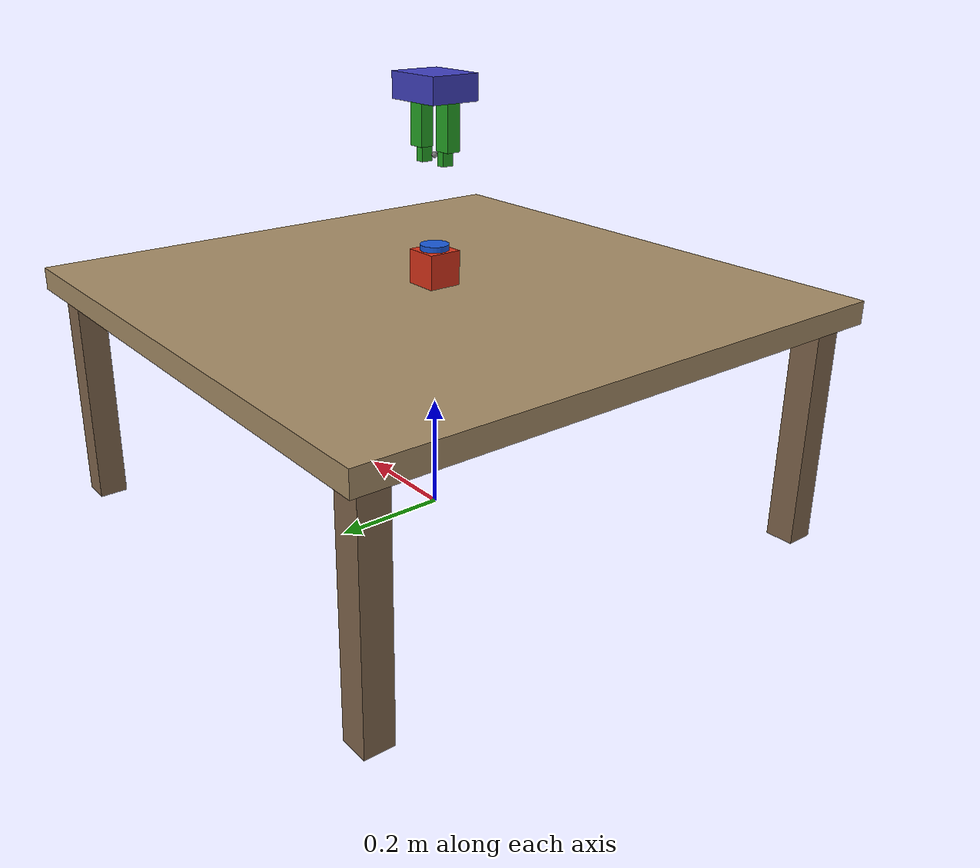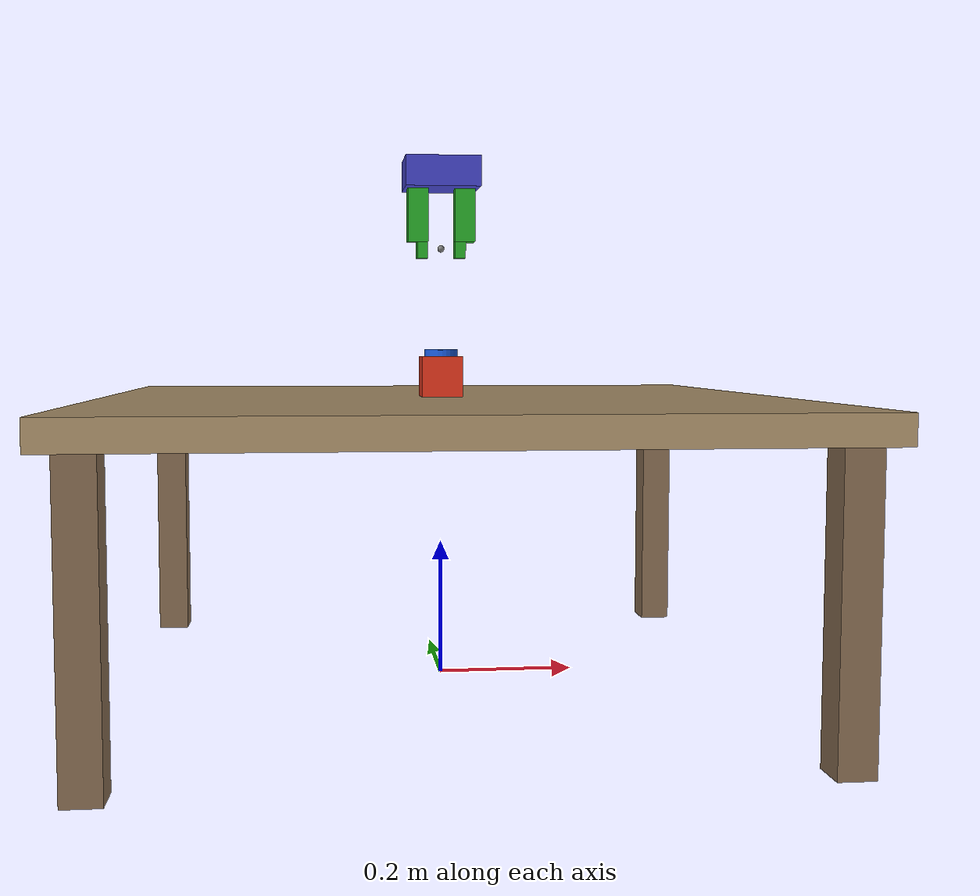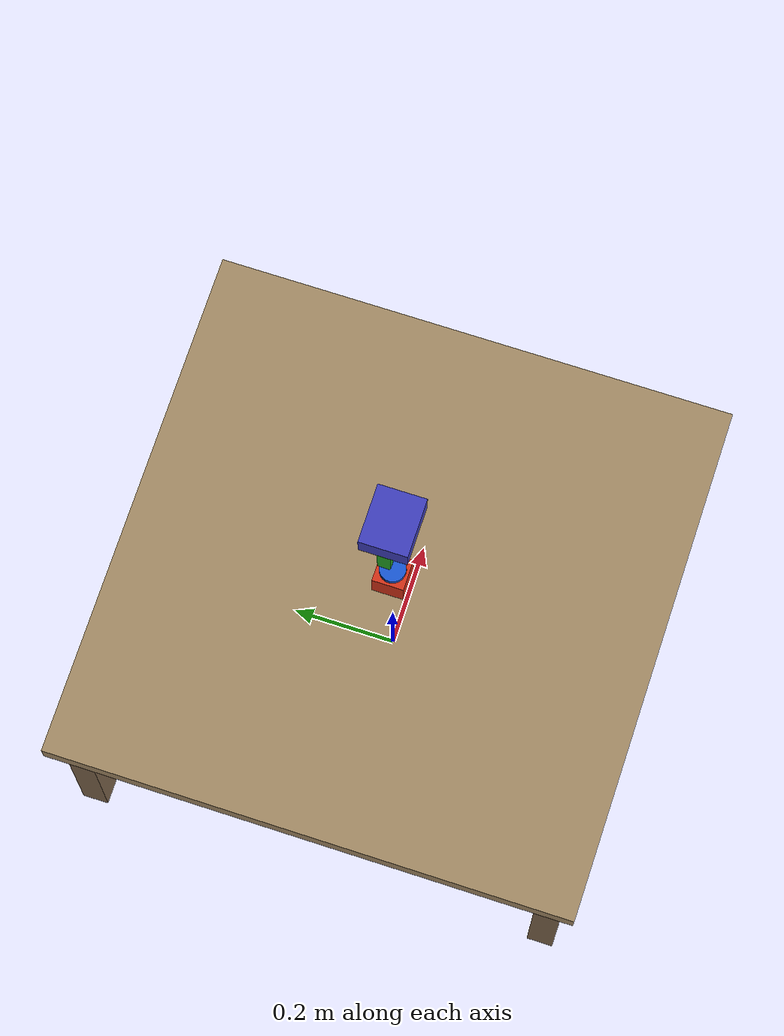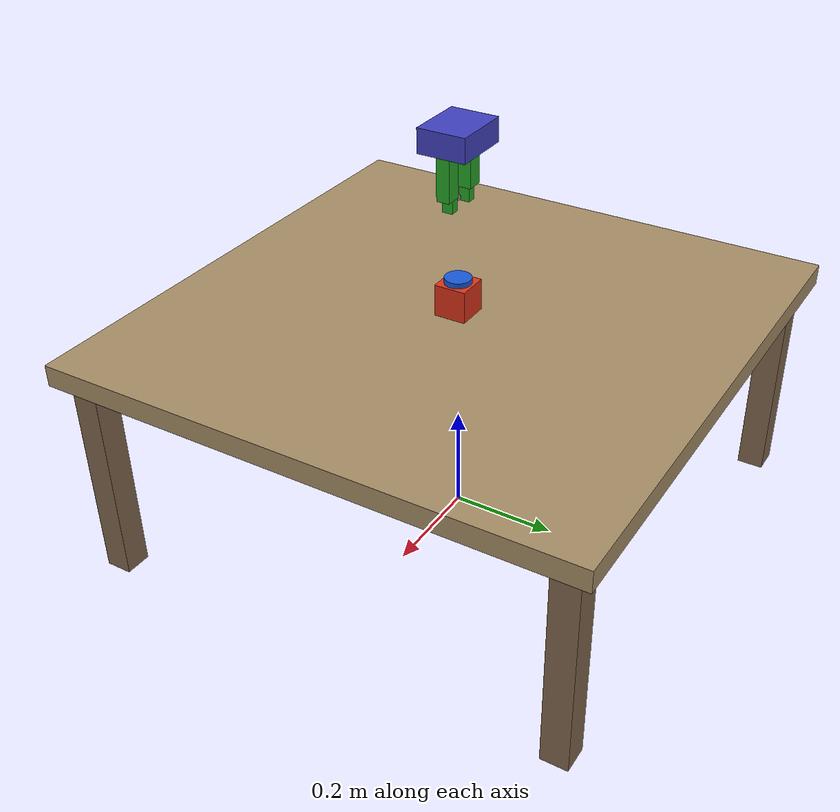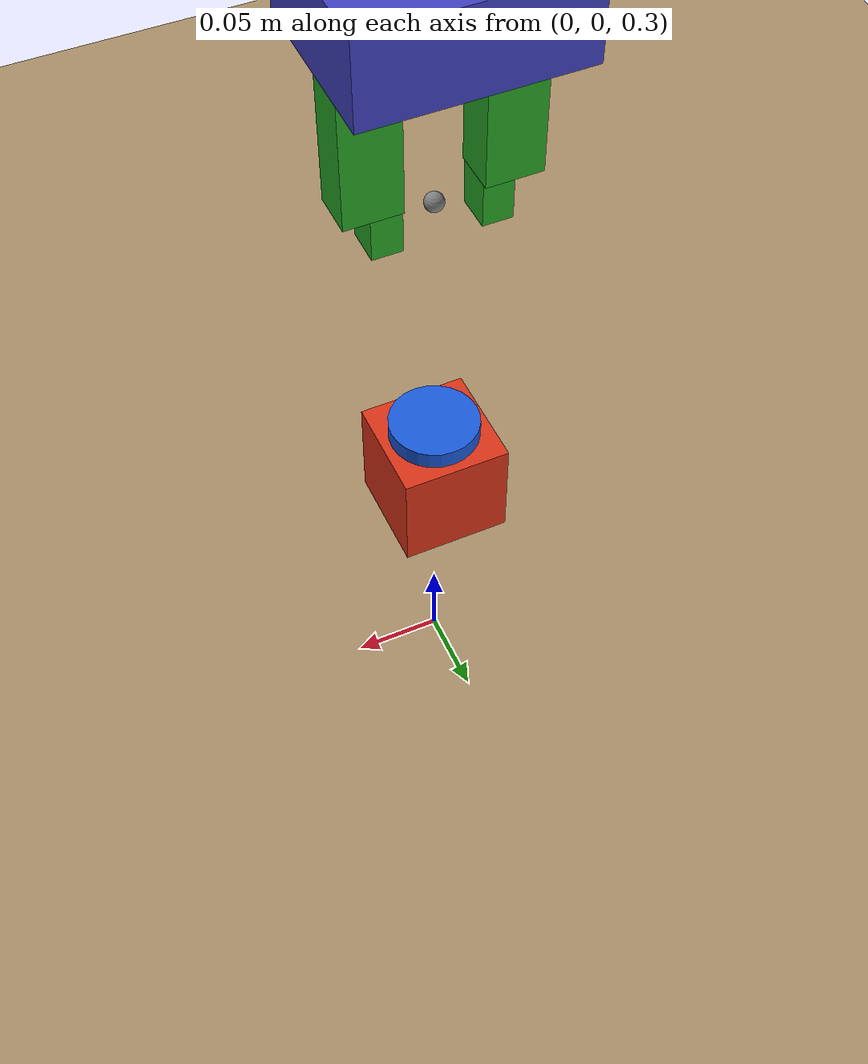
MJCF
<mujoco model="parallel_gripper_multi">

  <compiler angle="radian" autolimits="true"/>

  <option timestep="0.002" gravity="0 0 -9.81" solver="Newton"
          iterations="50" tolerance="1e-10"/>

  <default>
    <joint limited="true" damping="0.5"/>
    <geom contype="1" conaffinity="1" condim="3"
          friction="1.0 0.005 0.0001"
          solimp="0.99 0.99 0.01" solref="0.01 1"/>
  </default>

  <asset>
    <material name="table_mat"    rgba="0.65 0.55 0.40 1"/>
    <material name="gripper_mat"  rgba="0.25 0.25 0.75 1"/>
    <material name="finger_mat"   rgba="0.15 0.65 0.15 1"/>
    <!-- object materials -->
    <material name="box_mat"      rgba="0.85 0.20 0.10 1"/>   <!-- red   -->
    <material name="cyl_mat"      rgba="0.10 0.35 0.85 1"/>   <!-- blue  -->
    <material name="sph_mat"      rgba="0.15 0.75 0.35 1"/>   <!-- green -->
  </asset>

  <worldbody>

    <!-- ── Table ─────────────────────────────────────────────────────────── -->
    <body name="table" pos="0 0 0.4">
      <geom name="table_top" type="box" size="0.5 0.5 0.02"
            material="table_mat" mass="200"/>
      <geom type="box" size="0.025 0.025 0.2" pos=" 0.45  0.45 -0.22" rgba="0.5 0.4 0.3 1"/>
      <geom type="box" size="0.025 0.025 0.2" pos="-0.45  0.45 -0.22" rgba="0.5 0.4 0.3 1"/>
      <geom type="box" size="0.025 0.025 0.2" pos=" 0.45 -0.45 -0.22" rgba="0.5 0.4 0.3 1"/>
      <geom type="box" size="0.025 0.025 0.2" pos="-0.45 -0.45 -0.22" rgba="0.5 0.4 0.3 1"/>
    </body>

    <!-- ── Object: Box  (heavy, 150 g) ───────────────────────────────────── -->
    <!--   half-sizes 0.03 m → rests at z = 0.42 + 0.03 = 0.45             -->
    <body name="obj_box" pos="0 0 0.45">
      <freejoint name="free_box"/>
      <geom name="geom_box" type="box" size="0.03 0.03 0.03"
            material="box_mat" mass="0.15"
            friction="1.5 0.005 0.0001"/>
      <site name="site_box" size="0.004"/>
    </body>

    <!-- ── Object: Cylinder  (medium, 80 g) ─────────────────────────────── -->
    <!--   radius=0.025 half-height=0.035 → rests at z = 0.42 + 0.035 = 0.455 -->
    <body name="obj_cyl" pos="0 0 0.455">
      <freejoint name="free_cyl"/>
      <geom name="geom_cyl" type="cylinder" size="0.025 0.035"
            material="cyl_mat" mass="0.08"
            friction="1.2 0.005 0.0001"/>
      <site name="site_cyl" size="0.004"/>
    </body>

    <!-- ── Object: Sphere  (light, 30 g) ─────────────────────────────────── -->
    <!--   radius=0.028 → rests at z = 0.42 + 0.028 = 0.448                -->
    <body name="obj_sph" pos="0 0 0.448">
      <freejoint name="free_sph"/>
      <geom name="geom_sph" type="sphere" size="0.028"
            material="sph_mat" mass="0.03"
            friction="0.8 0.005 0.0001"/>
      <site name="site_sph" size="0.004"/>
    </body>

    <!-- ── Gripper ────────────────────────────────────────────────────────── -->
    <body name="gripper_base" pos="0 0 0.75">
      <joint name="gripper_slide_z" type="slide" axis="0 0 1"
             range="-0.35 0.1" damping="10"/>
      <geom name="base_geom" type="box" size="0.055 0.045 0.022"
            material="gripper_mat" mass="0.5"/>

      <!-- site at the geometric centre between the two fingertips -->
      <site name="gripper_center" pos="0 0 -0.11" size="0.005"/>

      <!-- Left finger -->
      <body name="left_finger" pos="-0.035 0 -0.02">
        <joint name="left_finger_joint" type="slide" axis="1 0 0"
               range="0.0 0.06" damping="2"/>
        <geom name="left_palm" type="box" size="0.015 0.012 0.04"
              pos="0 0 -0.04" material="finger_mat" mass="0.05"/>
        <geom name="left_tip"  type="box" size="0.008 0.010 0.012"
              pos="0.007 0 -0.092" material="finger_mat" mass="0.01"
              friction="2.5 0.01 0.001"/>
        <site name="site_left_tip" pos="0.007 0 -0.092" size="0.004"/>
      </body>

      <!-- Right finger -->
      <body name="right_finger" pos="0.035 0 -0.02">
        <joint name="right_finger_joint" type="slide" axis="-1 0 0"
               range="0.0 0.06" damping="2"/>
        <geom name="right_palm" type="box" size="0.015 0.012 0.04"
              pos="0 0 -0.04" material="finger_mat" mass="0.05"/>
        <geom name="right_tip"  type="box" size="0.008 0.010 0.012"
              pos="-0.007 0 -0.092" material="finger_mat" mass="0.01"
              friction="2.5 0.01 0.001"/>
        <site name="site_right_tip" pos="-0.007 0 -0.092" size="0.004"/>
      </body>
    </body>

  </worldbody>

  <!-- ── Actuators ─────────────────────────────────────────────────────────── -->
  <actuator>
    <position name="act_z"     joint="gripper_slide_z"   kp="500" ctrlrange="-0.35 0.1"/>
    <position name="act_left"  joint="left_finger_joint"  kp="100" ctrlrange="0.0 0.06"/>
    <position name="act_right" joint="right_finger_joint" kp="100" ctrlrange="0.0 0.06"/>
  </actuator>

  <!-- ── Sensors ───────────────────────────────────────────────────────────── -->
  <sensor>
    <framepos  name="sens_box_pos" objtype="site" objname="site_box"/>
    <framepos  name="sens_cyl_pos" objtype="site" objname="site_cyl"/>
    <framepos  name="sens_sph_pos" objtype="site" objname="site_sph"/>
    <framepos  name="sens_gripper" objtype="site" objname="gripper_center"/>
  </sensor>

</mujoco>
